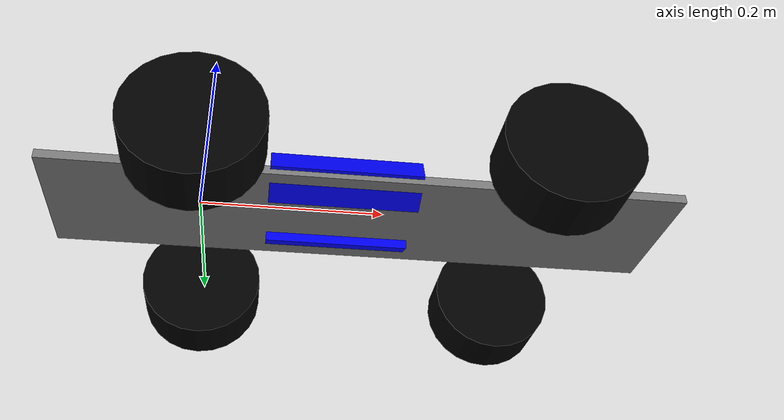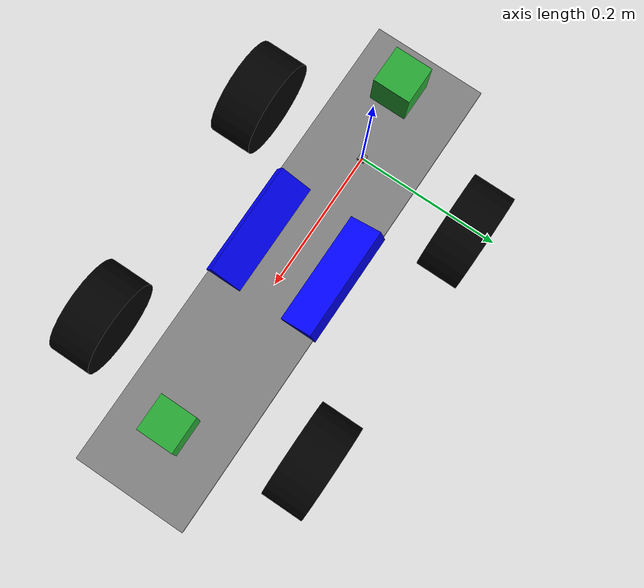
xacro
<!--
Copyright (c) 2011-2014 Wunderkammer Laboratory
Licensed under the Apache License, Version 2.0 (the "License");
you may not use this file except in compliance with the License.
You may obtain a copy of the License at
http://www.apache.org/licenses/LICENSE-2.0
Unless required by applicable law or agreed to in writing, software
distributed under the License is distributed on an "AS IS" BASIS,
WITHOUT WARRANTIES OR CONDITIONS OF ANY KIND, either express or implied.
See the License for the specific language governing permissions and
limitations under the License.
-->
<?xml version="1.0"?>

<robot name="em_3905" xmlns:xacro="http://www.ros.org/wiki/xacro">
  <!-- Degree-to-radian conversions -->
  <xacro:property name="degrees_45" value="0.785398163"/>
  <xacro:property name="degrees_90" value="1.57079633"/>

  <!-- chassis_length is measured along the x axis, chassis_width
       along the y axis, and chassis_height along the z axis. -->
  <xacro:property name="chassis_length" value="0.680"/>
  <xacro:property name="chassis_width" value="0.160"/>
  <xacro:property name="chassis_height" value="0.01"/>
  <xacro:property name="chassis_mass" value="2.788"/>

  <xacro:property name="battery_x_offset" value="0.055"/>
  <xacro:property name="battery_dist" value="0.065"/>
  <xacro:property name="battery_comp_depth" value="0.02"/>
  <xacro:property name="battery_comp_angle" value="0.34906585"/>
  <xacro:property name="battery_length" value="0.16"/>
  <xacro:property name="battery_width" value="0.047"/>
  <xacro:property name="battery_height" value="0.024"/>
  <xacro:property name="battery_mass" value="0.5025"/>

  <!--xacro:property name="hub_dia" value="0.102"/-->
  <!--xacro:property name="tire_dia" value="0.138"/-->
  <!--xacro:property name="tire_width" value="0.0889"/-->
  <!--xacro:property name="hex_hub_depth" value="0.01445"/-->
  <xacro:property name="hub_dia" value="0.102"/>
  <xacro:property name="tire_dia" value="0.138"/>
  <xacro:property name="tire_width" value="0.06"/>
  <xacro:property name="hex_hub_depth" value="0.0"/>
  <xacro:property name="wheel_mass" value="0.29"/>

  <xacro:property name="wheelbase" value="0.356"/>
  <xacro:property name="hex_hub_dist" value="0.385"/>
  <xacro:property name="axle_length" value="0.03"/>
  <xacro:property name="wheel_travel" value="0.084"/>
  <xacro:property name="shock_z_offset" value="0.0655"/>

  <xacro:property name="shock_eff_limit" value="12.5106"/>
  <xacro:property name="shock_vel_limit" value="1000"/>

  <xacro:property name="axle_eff_limit" value="5.12766"/>
  <xacro:property name="axle_vel_limit" value="244.8696"/>

  <!-- These constants are used to simulate a Traxxas 2056 servo operated at
       6 V. servo_stall_torque is measured in N m. servo_no_load_speed is
       measured in rad/s. -->
  <xacro:property name="servo_stall_torque" value="0.5649"/>
  <xacro:property name="servo_no_load_speed" value="4.553"/>

  <material name="battery_mat">
    <color rgba="0 0 1 1"/>
  </material>
  <material name="chassis_mat">
    <color rgba="0.5 0.5 0.5 1"/>
  </material>
  <material name="tire_mat">
    <color rgba="0 0 0 1"/>
  </material>

  <!-- Null inertial element. This is needed to make the model work with
       Gazebo. -->
  <xacro:macro name="null_inertial">
    <inertial>
      <mass value="0.001"/>
      <inertia ixx="0.001" ixy="0" ixz="0" iyy="0.001" iyz="0" izz="0.001"/>
    </inertial>
  </xacro:macro>

  <!-- Inertia of a solid cuboid. Width is measured along the x axis, depth
       along the y axis, and height along the z axis. -->
  <xacro:macro name="solid_cuboid_inertial"
               params="width depth height mass *origin">
    <inertial>
      <xacro:insert_block name="origin"/>
      <mass value="${mass}"/>
      <inertia ixx="${mass * (depth * depth + height * height) / 12}"
               ixy="0" ixz="0"
               iyy="${mass * (width * width + height * height) / 12}"
               iyz="0"
               izz="${mass * (width * width + depth * depth) / 12}"/>
    </inertial>
  </xacro:macro>

  <xacro:macro name="thick_walled_tube_inertial"
               params="inner_rad outer_rad height mass">
    <inertial>
      <mass value="${mass}"/>
      <inertia ixx="${(1 / 12) * mass * (3 * (inner_rad * inner_rad +
                    outer_rad * outer_rad) + height * height)}"
               ixy="0" ixz="0"
               iyy="${(1 / 12) * mass * (3 * (inner_rad * inner_rad +
                    outer_rad * outer_rad) + height * height)}"
               iyz="0"
               izz="${mass * (inner_rad * inner_rad +
                    outer_rad * outer_rad) / 2}"/>
    </inertial>
  </xacro:macro>

  <!-- Battery -->
  <xacro:macro name="battery" params="prefix reflect">
    <joint name="chassis_to_${prefix}_battery" type="fixed">
      <parent link="chassis"/>
      <child link="${prefix}_battery_offset"/>
      <origin xyz="${battery_x_offset - battery_length / 2}
                   ${reflect * battery_dist / 2}
                   0"
              rpy="${reflect * battery_comp_angle} 0 0"/>
    </joint>

    <link name="${prefix}_battery_offset">
      <xacro:null_inertial/>
    </link>

    <joint name="offset_to_${prefix}_battery" type="fixed">
      <parent link="${prefix}_battery_offset"/>
      <child link="${prefix}_battery"/>
      <origin xyz="0
                   ${reflect * battery_width / 2}
                   ${(battery_height / 2) - battery_comp_depth}"/>
    </joint>

    <link name="${prefix}_battery">
      <visual>
        <geometry>
          <box size="${battery_length} ${battery_width} ${battery_height}"/>
        </geometry>
        <material name="battery_mat"/>
      </visual>

      <collision>
        <geometry>
          <box size="${battery_length} ${battery_width} ${battery_height}"/>
        </geometry>
      </collision>

      <xacro:solid_cuboid_inertial
         width="${battery_length}" depth="${battery_width}"
         height="${battery_height}" mass="${battery_mass}">
        <origin/>
      </xacro:solid_cuboid_inertial>
    </link>

    <gazebo reference="${prefix}_battery">
      <material>Gazebo/Blue</material>
    </gazebo>
  </xacro:macro>

  <!-- Shock absorber -->
  <xacro:macro name="shock"
               params="lr_prefix fr_prefix lr_reflect fr_reflect child">
    <joint name="${lr_prefix}_${fr_prefix}_shock" type="prismatic">
      <parent link="chassis"/>
      <child link="${child}"/>

      <origin xyz="${fr_reflect * wheelbase / 2}
                   ${lr_reflect * ((hex_hub_dist / 2) - axle_length)}
                   ${(wheel_travel / 2) - shock_z_offset}"/>
      <axis xyz="0 0 -1"/>
      <limit lower="${-wheel_travel / 2}" upper="${wheel_travel / 2}"
             effort="${shock_eff_limit}" velocity="${shock_vel_limit}"/>
    </joint>
    <transmission name="${lr_prefix}_${fr_prefix}_shock_trans">
      <type>transmission_interface/SimpleTransmission</type>
      <joint name="${lr_prefix}_${fr_prefix}_shock">
        <hardwareInterface>EffortJointInterface</hardwareInterface>
      </joint>
      <actuator name="${lr_prefix}_${fr_prefix}_shock_act">
        <!-- This hardwareInterface element exists for compatibility
             with ROS Hydro. -->
        <hardwareInterface>EffortJointInterface</hardwareInterface>
        <mechanicalReduction>1</mechanicalReduction>
      </actuator>
    </transmission>
  </xacro:macro>

  <!-- The "wheel" macro defines an axle carrier, axle, and wheel. -->
  <xacro:macro name="wheel" params="lr_prefix fr_prefix lr_reflect">
    <link name="${lr_prefix}_${fr_prefix}_axle_carrier">
      <xacro:null_inertial/>
    </link>

    <!-- The left and right axles have the same axis so that identical
         rotation values cause the wheels to rotate in the same direction. -->
    <joint name="${lr_prefix}_${fr_prefix}_axle" type="continuous">
      <parent link="${lr_prefix}_${fr_prefix}_axle_carrier"/>
      <child link="${lr_prefix}_${fr_prefix}_wheel"/>
      <origin rpy="${degrees_90} 0 0"/>
      <axis xyz="0 0 -1"/>
      <limit effort="${axle_eff_limit}" velocity="${axle_vel_limit}"/>
    </joint>
    <transmission name="${lr_prefix}_${fr_prefix}_axle_trans">
      <type>transmission_interface/SimpleTransmission</type>
      <joint name="${lr_prefix}_${fr_prefix}_axle">
        <hardwareInterface>EffortJointInterface</hardwareInterface>
      </joint>
      <actuator name="${lr_prefix}_${fr_prefix}_axle_act">
        <!-- This hardwareInterface element exists for compatibility
             with ROS Hydro. -->
        <hardwareInterface>EffortJointInterface</hardwareInterface>
        <mechanicalReduction>1</mechanicalReduction>
      </actuator>
    </transmission>

    <link name="${lr_prefix}_${fr_prefix}_wheel">
      <visual>
        <origin xyz="0
                     ${lr_reflect * (axle_length - (tire_width /
                     2 - hex_hub_depth))}
                     0"/>
        <geometry>
          <cylinder radius="${tire_dia / 2}" length="${tire_width}"/>
        </geometry>
        <material name="tire_mat"/>
      </visual>

      <collision>
        <origin xyz="0
                     ${lr_reflect * (axle_length - (tire_width /
                     2 - hex_hub_depth))}
                     0"/>
        <geometry>
          <cylinder radius="${tire_dia / 2}" length="${tire_width}"/>
        </geometry>
      </collision>

      <xacro:thick_walled_tube_inertial
          inner_rad="${hub_dia / 2}" outer_rad="${tire_dia / 2}"
          height="${tire_width}" mass="${wheel_mass}"/>
    </link>

    <gazebo reference="${lr_prefix}_${fr_prefix}_wheel">
      <material>Gazebo/Black</material>
    </gazebo>
  </xacro:macro>

  <!-- Front wheel -->
  <xacro:macro name="front_wheel"
               params="lr_prefix fr_prefix lr_reflect fr_reflect">
    <xacro:shock lr_prefix="${lr_prefix}" fr_prefix="${fr_prefix}"
                 lr_reflect="${lr_reflect}" fr_reflect="${fr_reflect}"
                 child="${lr_prefix}_steering_link"/>

    <link name="${lr_prefix}_steering_link">
      <xacro:null_inertial/>
    </link>

    <joint name="${lr_prefix}_steering_joint" type="revolute">
      <parent link="${lr_prefix}_steering_link"/>
      <child link="${lr_prefix}_${fr_prefix}_axle_carrier"/>
      <axis xyz="0 0 1"/>
      <limit lower="${-degrees_45}" upper="${degrees_45}"
             effort="${servo_stall_torque}" velocity="${servo_no_load_speed}"/>
    </joint>
    <transmission name="${lr_prefix}_steering_trans">
      <type>transmission_interface/SimpleTransmission</type>
      <joint name="${lr_prefix}_steering_joint">
        <hardwareInterface>EffortJointInterface</hardwareInterface>
      </joint>
      <actuator name="${lr_prefix}_steering_act">
        <!-- This hardwareInterface element exists for compatibility
             with ROS Hydro. -->
        <hardwareInterface>EffortJointInterface</hardwareInterface>
        <mechanicalReduction>1</mechanicalReduction>
      </actuator>
    </transmission>

    <xacro:wheel lr_prefix="${lr_prefix}" fr_prefix="${fr_prefix}"
                 lr_reflect="${lr_reflect}"/>
  </xacro:macro>

  <!-- Rear wheel -->
  <xacro:macro name="rear_wheel"
               params="lr_prefix fr_prefix lr_reflect fr_reflect">
    <xacro:shock lr_prefix="${lr_prefix}" fr_prefix="${fr_prefix}"
                 lr_reflect="${lr_reflect}" fr_reflect="${fr_reflect}"
                 child="${lr_prefix}_${fr_prefix}_axle_carrier"/>
    <xacro:wheel lr_prefix="${lr_prefix}" fr_prefix="${fr_prefix}"
                 lr_reflect="${lr_reflect}"/>
  </xacro:macro>

  <!-- base_link must have geometry so that its axes can be displayed in
       rviz. -->
  <link name="base_link">
    <visual>
      <geometry>
        <box size="0.01 0.01 0.01"/>
      </geometry>
      <material name="chassis_mat"/>
    </visual>
  </link>
  <gazebo reference="base_link">
    <material>Gazebo/Grey</material>
  </gazebo>

  <!-- Chassis -->
  <link name="chassis">
    <visual>
      <origin xyz="0 0 ${-chassis_height / 2}"/>
      <geometry>
        <box size="${chassis_length} ${chassis_width} ${chassis_height}"/>
      </geometry>
      <material name="chassis_mat"/>
    </visual>

    <collision>
      <origin xyz="0 0 ${-chassis_height / 2}"/>
      <geometry>
        <box size="${chassis_length} ${chassis_width} ${chassis_height}"/>
      </geometry>
    </collision>

    <xacro:solid_cuboid_inertial
        width="${chassis_length}" depth="${chassis_width}"
        height="${chassis_height}" mass="${chassis_mass}">
      <origin xyz="0 0 ${-chassis_height / 2}"/>
    </xacro:solid_cuboid_inertial>
  </link>
  <gazebo reference="chassis">
    <material>Gazebo/Grey</material>
  </gazebo>

  <joint name="base_link_to_chasis" type="fixed">
    <parent link="base_link"/>
    <child link="chassis"/>
    <origin xyz="	${wheelbase / 2}
					0
					0"/>
  </joint>

  <!-- Batteries -->
  <xacro:battery prefix="left" reflect="1"/>
  <xacro:battery prefix="right" reflect="-1"/>

  <!-- Wheels -->
  <xacro:front_wheel lr_prefix="left" fr_prefix="front"
                     lr_reflect="1" fr_reflect="1"/>
  <xacro:front_wheel lr_prefix="right" fr_prefix="front"
                     lr_reflect="-1" fr_reflect="1"/>
  <xacro:rear_wheel lr_prefix="left" fr_prefix="rear"
                    lr_reflect="1" fr_reflect="-1"/>
  <xacro:rear_wheel lr_prefix="right" fr_prefix="rear"
                    lr_reflect="-1" fr_reflect="-1"/>

  <gazebo>
    <plugin name="gazebo_ros_control" filename="libgazebo_ros_control.so"/>
  </gazebo>

  <!-- hokuyo front -->
  <link name="hokuyo_front_link">
    <visual>
      <geometry>
        <box size="0.05 0.05 0.06" />
      </geometry>
      <material name="Green" />
    </visual>
   <collision>
      <geometry>
        <box size="0.05 0.05 0.06" />
      </geometry>
    </collision>
  </link>
<joint name="laser_front" type="fixed">
    <origin xyz="0.2425 0.00 0.07" rpy="0 0 0" />
    <parent link="chassis" />
    <child link="hokuyo_front_link" />
  </joint>
  <gazebo reference="hokuyo_front_link">
    <sensor type="ray" name="head_hokuyo_sensor">
      <pose>0 0 0 0 0 0</pose>
      <visualize>true</visualize>
      <update_rate>40</update_rate>
      <ray>
        <scan>
          <horizontal>
            <samples>642</samples>
            <resolution>1</resolution>
            <min_angle>-1.40</min_angle>
            <max_angle>1.40</max_angle>
          </horizontal>
        </scan>
        <range>
          <min>0.10</min>
          <max>30.0</max>
          <resolution>0.01</resolution>
        </range>
        <noise>
          <type>gaussian</type>
          <mean>0.0</mean>
          <stddev>0.01</stddev>
        </noise>
      </ray>
      <plugin name="gazebo_ros_head_hokuyo_controller" filename="libgazebo_ros_laser.so">
        <topicName>scan_front</topicName>
        <frameName>/hokuyo_front_link</frameName>
      </plugin>
    </sensor>
  </gazebo>

<!-- hokuyo back -->

  <link name="hokuyo_back_link">
    <visual>
      <geometry>
        <box size="0.05 0.05 0.06" />
      </geometry>
      <material name="Green" />
    </visual>
   <collision>
      <geometry>
        <box size="0.05 0.05 0.06" />
      </geometry>
    </collision>
  </link>

<joint name="laser_back" type="fixed">
    <origin xyz="-0.2475 0.00 0.12" rpy="0 0 3.14159" />
    <parent link="chassis" />
    <child link="hokuyo_back_link" />
  </joint>

  <gazebo reference="hokuyo_back_link">
    <sensor type="ray" name="back_hokuyo_sensor">
      <pose>0 0 0 0 0 0</pose>
      <visualize>true</visualize>
      <update_rate>10</update_rate>
      <ray>
        <scan>
          <horizontal>
            <samples>456</samples>
            <resolution>1</resolution>
            <min_angle>-1.40</min_angle>
            <max_angle>1.40</max_angle>
          </horizontal>
        </scan>
        <range>
          <min>0.10</min>
          <max>4.0</max>
          <resolution>0.01</resolution>
        </range>
        <noise>
          <type>gaussian</type>
          <mean>0.0</mean>
          <stddev>0.01</stddev>
        </noise>
      </ray>
      <plugin name="gazebo_ros_back_hokuyo_controller" filename="libgazebo_ros_laser.so">
        <topicName>scan_back</topicName>
        <frameName>/hokuyo_back_link</frameName>
      </plugin>
    </sensor>
  </gazebo>

<!-- imu -->
<!-- http://answers.gazebosim.org/question/4569/ros_controllers-problems/-->
  <gazebo>
    <plugin name="quadrotor_imu_sim" filename="libhector_gazebo_ros_imu.so">
      <updateRate>100.0</updateRate>
      <bodyName>chassis</bodyName>
      <topicName>/imu</topicName>
      <accelDrift>0.5 0.5 0.5</accelDrift>
      <accelGaussianNoise>0.35 0.35 0.3</accelGaussianNoise>
      <rateDrift>0.1 0.1 0.1</rateDrift>
      <rateGaussianNoise>0.05 0.05 0.015</rateGaussianNoise>
      <headingDrift>0.1</headingDrift>
      <headingGaussianNoise>0.05</headingGaussianNoise>
    </plugin>
  </gazebo>

<!-- magnetic - there are no good examples for drift, driftFrequency and gaussianNoise  -->
  <gazebo>
    <plugin name="quadrotor_magnetic_sim" filename="libhector_gazebo_ros_magnetic.so">
	<updateRate>100</updateRate><!--(double): the update rate of the sensor in milliseconds-->
	<robotNamespace>ackermann_vehicle</robotNamespace><!--(string): namespace prefix for topic names-->
	<bodyName>chassis</bodyName><!--(string, required): name of the body the sensor is attached to-->
	<topicName>/magnetic</topicName><!--(string): fix output topic (defaults to /fix)-->
	<magnitude>1.0</magnitude><!--(double): magnitude of the magnetic field in whatever unit you want (defaults to 1.0)-->
	<referenceHeading>0.0</referenceHeading> <!--(double): geographic heading of gazebo frame's x axis in degrees (defaults to 0.0)-->
	<declination>0.0</declination><!--(double): declination (angle between true and magnetic north) in degrees (defaults to 0.0)-->
	<inclination>60.0</inclination><!--(double): inclination (angle between the horizontal plane and the magnetic field) in degrees (defaults to 60.0)-->
	<offset>0 0 0</offset> <!--(Vector3): a constant offset added to the magnetic field vector. This parameter can be used to simulate deviation caused by magnetized iron within the robot.-->
	<drift>0.05 0.05 0.015</drift> <!--(Vector3): standard deviation of the drift error-->
	<driftFrequency>0.1 0.1 0.1</driftFrequency> <!--(Vector3): mean frequency of the drift-->
	<gaussianNoise>0.05 0.05 0.015</gaussianNoise><!--(Vector3): standard deviation of the additive Gaussian noise added to the magnetic field       -->
    </plugin>
  </gazebo>
</robot>
